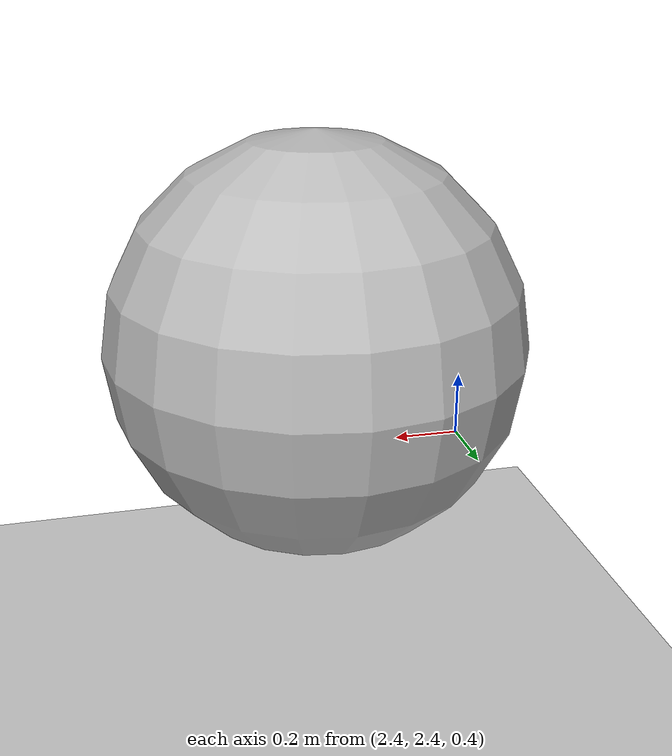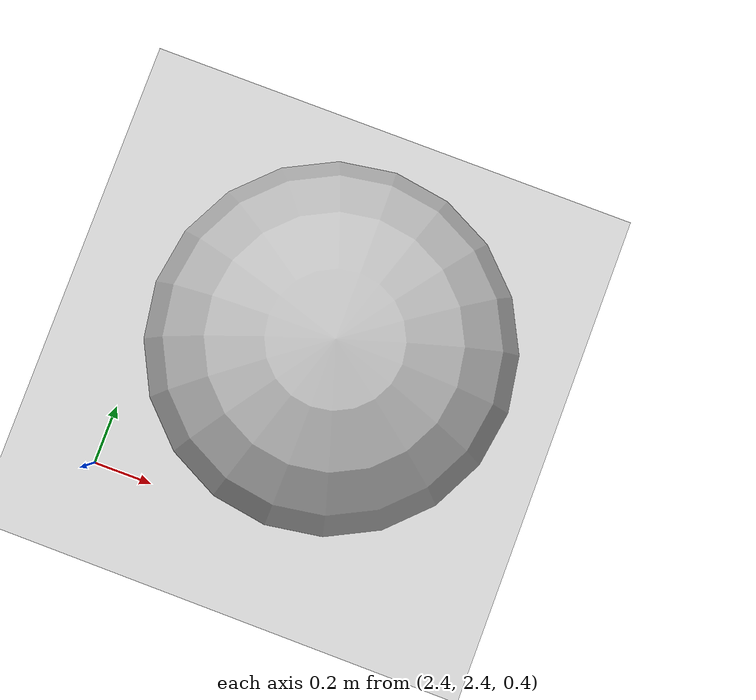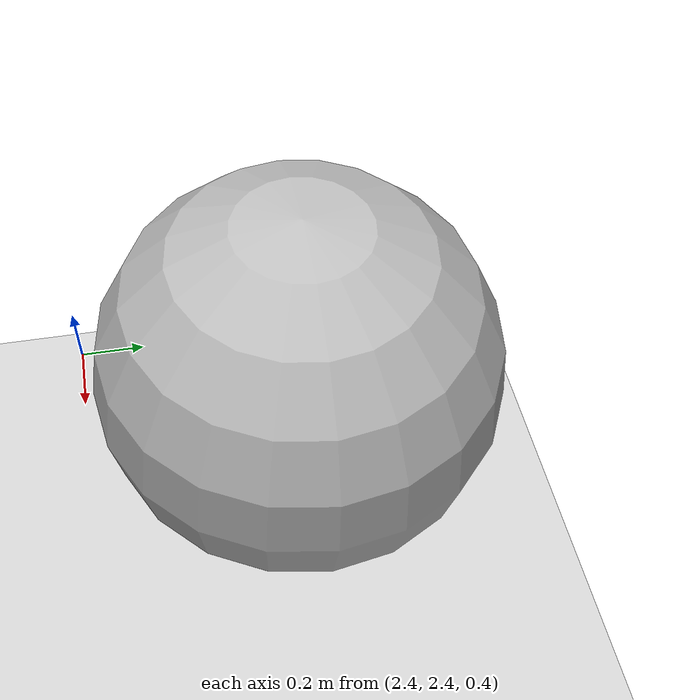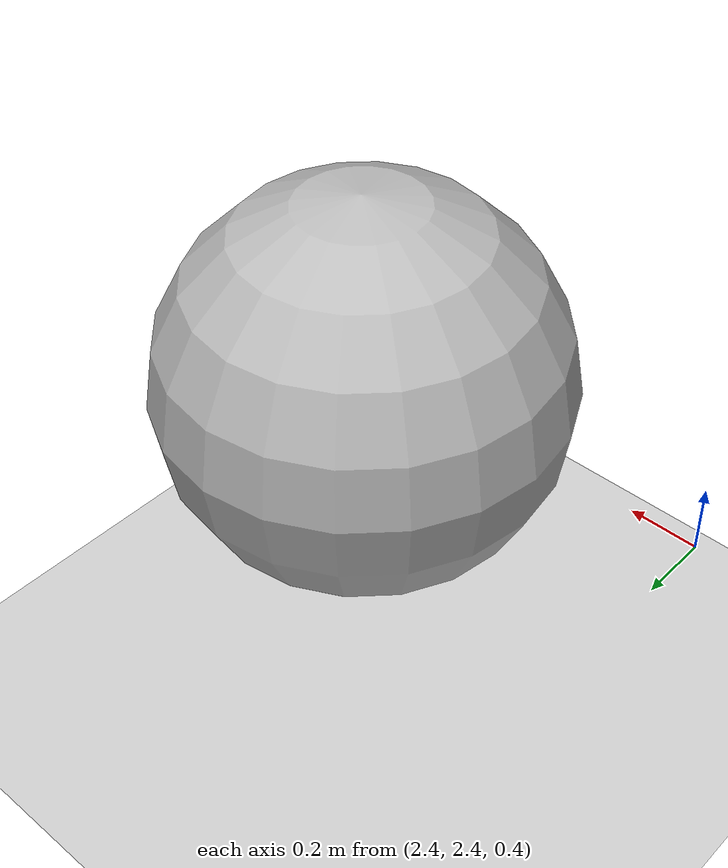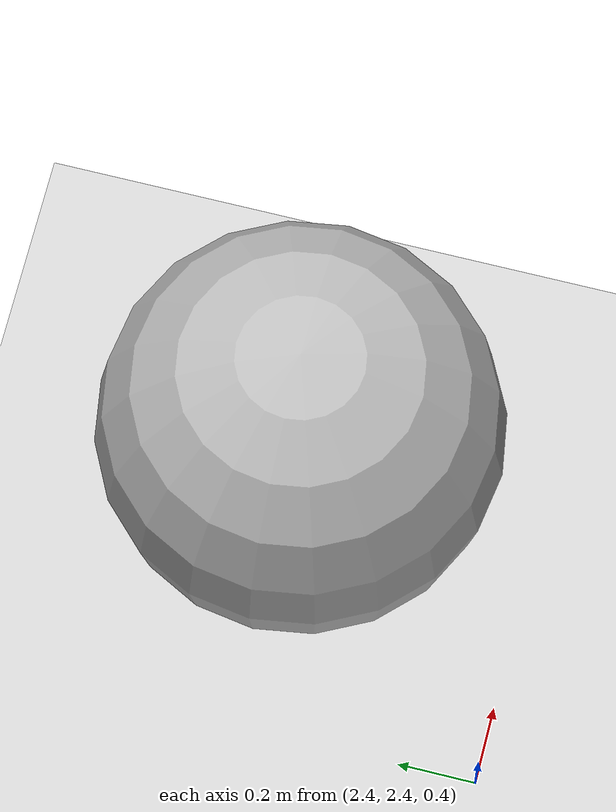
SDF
<sdf version="1.4">
 <world name="default">
  <light name="sun" type="directional">
   <pose>0 0 10 0 -0 0</pose>
   <diffuse>0.8 0.8 0.8 1</diffuse>
   <specular>0.2 0.2 0.2 1</specular>
   <attenuation>
    <range>1000</range>
    <constant>0.9</constant>
    <linear>0.01</linear>
    <quadratic>0.001</quadratic>
   </attenuation>
   <direction>-0.5 0.1 -0.9</direction>
  </light>
  <model name="ground_plane">
   <static>1</static>
   <link name="link">
    <collision name="collision">
     <geometry><plane><normal>0 0 1</normal><size>100 100</size></plane></geometry>
     <surface><friction><ode><mu>100</mu><mu2>50</mu2></ode></friction></surface>
    </collision>
    <visual name="visual">
     <cast_shadows>0</cast_shadows>
     <geometry><plane><normal>0 0 1</normal><size>100 100</size></plane></geometry>
     <material>
      <script><uri>file://media/materials/scripts/gazebo.material</uri><name>Gazebo/Grey</name></script>
     </material>
    </visual>
    <velocity_decay><linear>0</linear><angular>0</angular></velocity_decay>
   </link>
  </model>
  <physics type="ode">
   <max_step_size>0.001</max_step_size>
   <real_time_factor>1</real_time_factor>
   <real_time_update_rate>1000</real_time_update_rate>
   <gravity>0 0 -9.8</gravity>
  </physics>
  <scene><ambient>0.4 0.4 0.4 1</ambient><background>0.7 0.7 0.7 1</background><shadows>1</shadows></scene>
  <model name="Sphere1">
   <pose>3 3 1 0 0 0</pose>
   <static>0</static>
   <link name="link">
    <gravity>false</gravity>
    <collision name="collision"><geometry><sphere><radius>0.5</radius></sphere></geometry></collision>
    <visual name="visual"><geometry><sphere><radius>0.5</radius></sphere></geometry></visual>
   </link>
  </model>
  <model name="House 2"><pose>2 10 0 0 -0 0</pose></model>
  <model name="House 1"/>
  <model name="jersey_barrier"><pose>3 -3 0 0 -0 0</pose></model>
  <model name="jersey_barrier_0"><pose>6 -1 0 0 -0 1.6</pose></model>
  <model name="grey_wall"><pose>10.402 7.71769 0 0 -0 0</pose></model>
  <model name="nist_stairs_120"><pose>9.01164 2.82223 0 0 -0 0</pose></model>
  <model name="nist_elevated_floor_120"><pose>9 4 0 0 -0 0</pose></model>
  <model name="nist_maze_wall_240"><pose>9 4 0 0 -0 0</pose></model>
  <model name="nist"><pose>9.02578 4.02961 1.2 0 -0 1.6</pose></model>
 </world>
</sdf>
